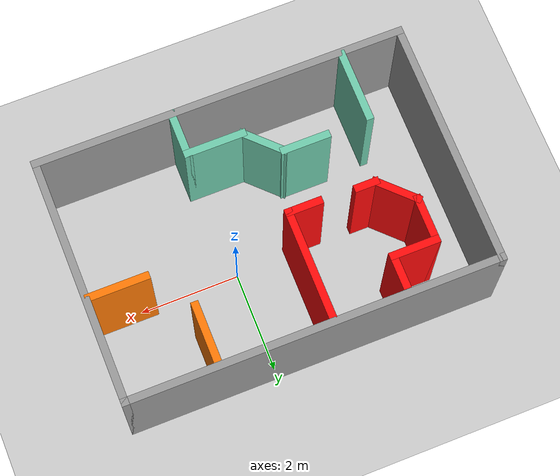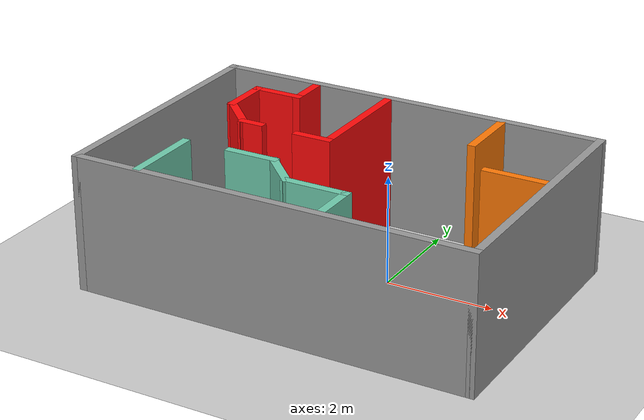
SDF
<sdf version="1.6">
 <world name="default">
  <light name="sun" type="directional">
   <pose>0 0 10 0 -0 0</pose>
   <diffuse>0.8 0.8 0.8 1</diffuse>
   <specular>0.2 0.2 0.2 1</specular>
   <attenuation>
    <range>1000</range>
    <constant>0.9</constant>
    <linear>0.01</linear>
    <quadratic>0.001</quadratic>
   </attenuation>
   <direction>-0.5 0.1 -0.9</direction>
  </light>
  <model name="ground_plane">
   <static>1</static>
   <link name="link">
    <collision name="collision">
     <geometry><plane><normal>0 0 1</normal><size>100 100</size></plane></geometry>
     <surface>
      <contact><collide_bitmask>65535</collide_bitmask></contact>
      <friction><ode><mu>100</mu><mu2>50</mu2></ode></friction>
     </surface>
    </collision>
    <visual name="visual">
     <cast_shadows>0</cast_shadows>
     <geometry><plane><normal>0 0 1</normal><size>100 100</size></plane></geometry>
     <material>
      <script><uri>file://media/materials/scripts/gazebo.material</uri><name>Gazebo/Grey</name></script>
     </material>
    </visual>
   </link>
  </model>
  <gravity>0 0 -9.8</gravity>
  <magnetic_field>6e-06 2.3e-05 -4.2e-05</magnetic_field>
  <atmosphere type="adiabatic"/>
  <physics name="default_physics" default="0" type="ode">
   <max_step_size>0.001</max_step_size>
   <real_time_factor>1</real_time_factor>
   <real_time_update_rate>1000</real_time_update_rate>
  </physics>
  <scene><ambient>0.4 0.4 0.4 1</ambient><background>0.7 0.7 0.7 1</background><shadows>1</shadows></scene>
  <audio><device>default</device></audio>
  <spherical_coordinates>
   <surface_model>EARTH_WGS84</surface_model>
   <latitude_deg>0</latitude_deg>
   <longitude_deg>0</longitude_deg>
   <elevation>0</elevation>
   <heading_deg>0</heading_deg>
  </spherical_coordinates>
  <model name="floorplan_small">
   <pose>-0.74322 -0.304327 0 0 -0 0</pose>
   <link name="Wall_10">
    <collision name="Wall_10_Collision">
     <geometry><box><size>5 0.15 2.5</size></box></geometry>
     <pose>0 0 1.25 0 -0 0</pose>
    </collision>
    <visual name="Wall_10_Visual">
     <pose>0 0 1.25 0 -0 0</pose>
     <geometry><box><size>5 0.15 2.5</size></box></geometry>
     <material>
      <script><uri>file://media/materials/scripts/gazebo.material</uri><name>Gazebo/Grey</name></script>
      <ambient>0 0 0 1</ambient>
     </material>
     <meta><layer>0</layer></meta>
    </visual>
    <pose>3.675 0 0 0 -0 1.5708</pose>
   </link>
   <link name="Wall_12">
    <collision name="Wall_12_Collision">
     <geometry><box><size>1 0.15 2.5</size></box></geometry>
     <pose>0 0 1.25 0 -0 0</pose>
    </collision>
    <visual name="Wall_12_Visual">
     <pose>0 0 1.25 0 -0 0</pose>
     <geometry><box><size>1 0.15 2.5</size></box></geometry>
     <material>
      <script><uri>file://media/materials/scripts/gazebo.material</uri><name>Gazebo/Grey</name></script>
      <ambient>1 0.0392157 0.0392157 1</ambient>
     </material>
     <meta><layer>0</layer></meta>
    </visual>
    <pose>-2.68312 1.24618 0 0 0 -1.5708</pose>
   </link>
   <link name="Wall_13">
    <collision name="Wall_13_Collision">
     <geometry><box><size>1 0.15 2.5</size></box></geometry>
     <pose>0 0 1.25 0 -0 0</pose>
    </collision>
    <visual name="Wall_13_Visual">
     <pose>0 0 1.25 0 -0 0</pose>
     <geometry><box><size>1 0.15 2.5</size></box></geometry>
     <material>
      <script><uri>file://media/materials/scripts/gazebo.material</uri><name>Gazebo/Grey</name></script>
      <ambient>1 0.0392157 0.0392157 1</ambient>
     </material>
     <meta><layer>0</layer></meta>
    </visual>
    <pose>-2.3826 0.520655 0 0 0 -0.785398</pose>
   </link>
   <link name="Wall_15">
    <collision name="Wall_15_Collision">
     <geometry><box><size>0.5 0.15 2.5</size></box></geometry>
     <pose>0 0 1.25 0 -0 0</pose>
    </collision>
    <visual name="Wall_15_Visual">
     <pose>0 0 1.25 0 -0 0</pose>
     <geometry><box><size>0.5 0.15 2.5</size></box></geometry>
     <material>
      <script><uri>file://media/materials/scripts/gazebo.material</uri><name>Gazebo/Grey</name></script>
      <ambient>1 0.0392157 0.0392157 1</ambient>
     </material>
     <meta><layer>0</layer></meta>
    </visual>
    <pose>-1.90708 0.220134 0 0 -0 0</pose>
   </link>
   <link name="Wall_17">
    <collision name="Wall_17_Collision">
     <geometry><box><size>1 0.15 2.5</size></box></geometry>
     <pose>0 0 1.25 0 -0 0</pose>
    </collision>
    <visual name="Wall_17_Visual">
     <pose>0 0 1.25 0 -0 0</pose>
     <geometry><box><size>1 0.15 2.5</size></box></geometry>
     <material>
      <script><uri>file://media/materials/scripts/gazebo.material</uri><name>Gazebo/Grey</name></script>
      <ambient>1 0.0392157 0.0392157 1</ambient>
     </material>
     <meta><layer>0</layer></meta>
    </visual>
    <pose>-2.25813 1.67118 0 0 -0 0</pose>
   </link>
   <link name="Wall_19">
    <collision name="Wall_19_Collision">
     <geometry><box><size>0.75 0.15 2.5</size></box></geometry>
     <pose>0 0 1.25 0 -0 0</pose>
    </collision>
    <visual name="Wall_19_Visual">
     <pose>0 0 1.25 0 -0 0</pose>
     <geometry><box><size>0.75 0.15 2.5</size></box></geometry>
     <material>
      <script><uri>file://media/materials/scripts/gazebo.material</uri><name>Gazebo/Grey</name></script>
      <ambient>1 0.0392157 0.0392157 1</ambient>
     </material>
     <meta><layer>0</layer></meta>
    </visual>
    <pose>-1.83312 1.97117 0 0 -0 1.5708</pose>
   </link>
   <link name="Wall_22">
    <collision name="Wall_22_Collision">
     <geometry><box><size>0.75 0.15 2.5</size></box></geometry>
     <pose>0 0 1.25 0 -0 0</pose>
    </collision>
    <visual name="Wall_22_Visual">
     <pose>0 0 1.25 0 -0 0</pose>
     <geometry><box><size>0.75 0.15 2.5</size></box></geometry>
     <material>
      <script><uri>file://media/materials/scripts/gazebo.material</uri><name>Gazebo/Grey</name></script>
      <ambient>1 0.0392157 0.0392157 1</ambient>
     </material>
     <meta><layer>0</layer></meta>
    </visual>
    <pose>-0.663875 0.189975 0 0 -0 0</pose>
   </link>
   <link name="Wall_23">
    <collision name="Wall_23_Collision">
     <geometry><box><size>2.25 0.15 2.5</size></box></geometry>
     <pose>0 0 1.25 0 -0 0</pose>
    </collision>
    <visual name="Wall_23_Visual">
     <pose>0 0 1.25 0 -0 0</pose>
     <geometry><box><size>2.25 0.15 2.5</size></box></geometry>
     <material>
      <script><uri>file://media/materials/scripts/gazebo.material</uri><name>Gazebo/Grey</name></script>
      <ambient>1 0.0392157 0.0392157 1</ambient>
     </material>
     <meta><layer>0</layer></meta>
    </visual>
    <pose>-0.363875 1.23998 0 0 -0 1.5708</pose>
   </link>
   <link name="Wall_26">
    <collision name="Wall_26_Collision">
     <geometry><box><size>1.5 0.15 2.5</size></box></geometry>
     <pose>0 0 1.25 0 -0 0</pose>
    </collision>
    <visual name="Wall_26_Visual">
     <pose>0 0 1.25 0 -0 0</pose>
     <geometry><box><size>1.5 0.15 2.5</size></box></geometry>
     <material>
      <script><uri>file://media/materials/scripts/gazebo.material</uri><name>Gazebo/Grey</name></script>
      <ambient>0.435294 0.796078 0.67451 1</ambient>
     </material>
     <meta><layer>0</layer></meta>
    </visual>
    <pose>-2.47153 -1.70172 0 0 0 -1.5708</pose>
   </link>
   <link name="Wall_28">
    <collision name="Wall_28_Collision">
     <geometry><box><size>1 0.15 2.5</size></box></geometry>
     <pose>0 0 1.25 0 -0 0</pose>
    </collision>
    <visual name="Wall_28_Visual">
     <pose>0 0 1.25 0 -0 0</pose>
     <geometry><box><size>1 0.15 2.5</size></box></geometry>
     <material>
      <script><uri>file://media/materials/scripts/gazebo.material</uri><name>Gazebo/Grey</name></script>
      <ambient>0.435294 0.796078 0.67451 1</ambient>
     </material>
     <meta><layer>0</layer></meta>
    </visual>
    <pose>-1.16045 -0.973825 0 0 -0 0</pose>
   </link>
   <link name="Wall_29">
    <collision name="Wall_29_Collision">
     <geometry><box><size>1 0.15 2.5</size></box></geometry>
     <pose>0 0 1.25 0 -0 0</pose>
    </collision>
    <visual name="Wall_29_Visual">
     <pose>0 0 1.25 0 -0 0</pose>
     <geometry><box><size>1 0.15 2.5</size></box></geometry>
     <material>
      <script><uri>file://media/materials/scripts/gazebo.material</uri><name>Gazebo/Grey</name></script>
      <ambient>0.435294 0.796078 0.67451 1</ambient>
     </material>
     <meta><layer>0</layer></meta>
    </visual>
    <pose>-0.43493 -1.27435 0 0 0 -0.785398</pose>
   </link>
   <link name="Wall_30">
    <collision name="Wall_30_Collision">
     <geometry><box><size>1.25 0.15 2.5</size></box></geometry>
     <pose>0 0 1.25 0 -0 0</pose>
    </collision>
    <visual name="Wall_30_Visual">
     <pose>0 0 1.25 0 -0 0</pose>
     <geometry><box><size>1.25 0.15 2.5</size></box></geometry>
     <material>
      <script><uri>file://media/materials/scripts/gazebo.material</uri><name>Gazebo/Grey</name></script>
      <ambient>0.435294 0.796078 0.67451 1</ambient>
     </material>
     <meta><layer>0</layer></meta>
    </visual>
    <pose>0.415591 -1.57487 0 0 -0 0</pose>
   </link>
   <link name="Wall_31">
    <collision name="Wall_31_Collision">
     <geometry><box><size>1 0.15 2.5</size></box></geometry>
     <pose>0 0 1.25 0 -0 0</pose>
    </collision>
    <visual name="Wall_31_Visual">
     <pose>0 0 1.25 0 -0 0</pose>
     <geometry><box><size>1 0.15 2.5</size></box></geometry>
     <material>
      <script><uri>file://media/materials/scripts/gazebo.material</uri><name>Gazebo/Grey</name></script>
      <ambient>0.435294 0.796078 0.67451 1</ambient>
     </material>
     <meta><layer>0</layer></meta>
    </visual>
    <pose>0.965591 -1.99987 0 0 0 -1.5708</pose>
   </link>
   <link name="Wall_35">
    <collision name="Wall_35_Collision">
     <geometry><box><size>1.25 0.15 2.5</size></box></geometry>
     <pose>0 0 1.25 0 -0 0</pose>
    </collision>
    <visual name="Wall_35_Visual">
     <pose>0 0 1.25 0 -0 0</pose>
     <geometry><box><size>1.25 0.15 2.5</size></box></geometry>
     <material>
      <script><uri>file://media/materials/scripts/gazebo.material</uri><name>Gazebo/Grey</name></script>
      <ambient>0.996078 0.47451 0.0196078 1</ambient>
     </material>
     <meta><layer>0</layer></meta>
    </visual>
    <pose>3.0643 0.375125 0 0 -0 0</pose>
   </link>
   <link name="Wall_37">
    <collision name="Wall_37_Collision">
     <geometry><box><size>1.25 0.15 2.5</size></box></geometry>
     <pose>0 0 1.25 0 -0 0</pose>
    </collision>
    <visual name="Wall_37_Visual">
     <pose>0 0 1.25 0 -0 0</pose>
     <geometry><box><size>1.25 0.15 2.5</size></box></geometry>
     <material>
      <script><uri>file://media/materials/scripts/gazebo.material</uri><name>Gazebo/Grey</name></script>
      <ambient>0.996078 0.47451 0.0196078 1</ambient>
     </material>
     <meta><layer>0</layer></meta>
    </visual>
    <pose>1.86627 1.77153 0 0 -0 1.5708</pose>
   </link>
   <link name="Wall_6">
    <collision name="Wall_6_Collision">
     <geometry><box><size>7.5 0.15 2.5</size></box></geometry>
     <pose>0 0 1.25 0 -0 0</pose>
    </collision>
    <visual name="Wall_6_Visual">
     <pose>0 0 1.25 0 -0 0</pose>
     <geometry><box><size>7.5 0.15 2.5</size></box></geometry>
     <material>
      <script><uri>file://media/materials/scripts/gazebo.material</uri><name>Gazebo/Grey</name></script>
      <ambient>0 0 0 1</ambient>
     </material>
     <meta><layer>0</layer></meta>
    </visual>
    <pose>0 2.425 0 0 -0 0</pose>
   </link>
   <link name="Wall_8">
    <collision name="Wall_8_Collision">
     <geometry><box><size>5 0.15 2.5</size></box></geometry>
     <pose>0 0 1.25 0 -0 0</pose>
    </collision>
    <visual name="Wall_8_Visual">
     <pose>0 0 1.25 0 -0 0</pose>
     <geometry><box><size>5 0.15 2.5</size></box></geometry>
     <material>
      <script><uri>file://media/materials/scripts/gazebo.material</uri><name>Gazebo/Grey</name></script>
      <ambient>0 0 0 1</ambient>
     </material>
     <meta><layer>0</layer></meta>
    </visual>
    <pose>-3.675 0 0 0 0 -1.5708</pose>
   </link>
   <link name="Wall_9">
    <collision name="Wall_9_Collision">
     <geometry><box><size>7.5 0.15 2.5</size></box></geometry>
     <pose>0 0 1.25 0 -0 0</pose>
    </collision>
    <visual name="Wall_9_Visual">
     <pose>0 0 1.25 0 -0 0</pose>
     <geometry><box><size>7.5 0.15 2.5</size></box></geometry>
     <material>
      <script><uri>file://media/materials/scripts/gazebo.material</uri><name>Gazebo/Grey</name></script>
      <ambient>0 0 0 1</ambient>
     </material>
     <meta><layer>0</layer></meta>
    </visual>
    <pose>0 -2.425 0 0 -0 0</pose>
   </link>
   <static>1</static>
  </model>
 </world>
</sdf>
